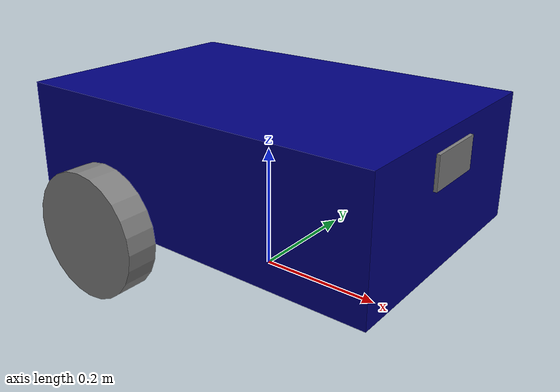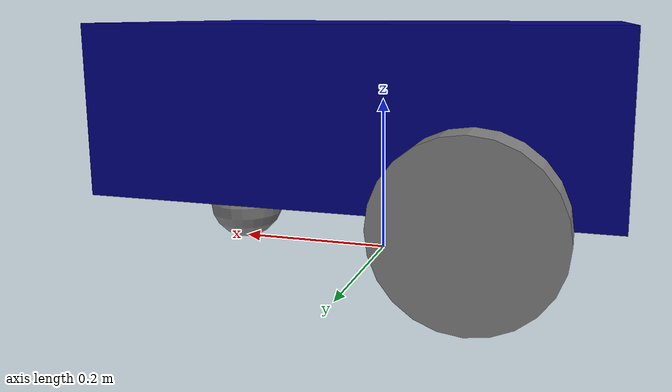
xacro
<?xml version="1.0"?>
<robot name="ugv_robot" xmlns:xacro="http://www.ros.org/wiki/xacro">

   <link name="base_footprint1" />
    <xacro:include filename="common_properties.xacro" />
    <xacro:include filename="mobile_base.xacro" />
    <xacro:include filename="mobile_base_gazebo.xacro" />

    <xacro:include filename="camera.xacro" />

</robot>

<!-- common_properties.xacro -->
<robot xmlns:xacro="http://www.ros.org/wiki/xacro">

    <material name="blue">
        <color rgba="0 0 0.5 1" />
    </material>

    <material name="grey">
        <color rgba="0.5 0.5 0.5 1" />
    </material>

        <material name="red">
        <color rgba="0.5 0 0 1" />
    </material>

    <xacro:macro name="box_inertia" params="m l w h xyz rpy">
      <inertial>
        <origin xyz="${xyz}" rpy="${rpy}" />
        <mass value="${m}" />
        <inertia ixx="${(m/12) * (h*h +l*l)}" ixy="0" ixz="0"
                 iyy="${(m/12) * (w*w +l*l)}" iyz="0"
                 izz="${(m/12) * (w*w +h*h)}" />
      </inertial>
    </xacro:macro>

    <xacro:macro name="cylinder_inertia" params="m r h xyz rpy">
        <inertial>
            <origin xyz="${xyz}" rpy="${rpy}" />
            <mass value="${m}" />
            <inertia ixx="${(m/12) * (3*r*r + h*h)}" ixy="0" ixz="0"
                     iyy="${(m/12) * (3*r*r + h*h)}" iyz="0"
                     izz="${(m/2) * (r*r)}" />
        </inertial>
    </xacro:macro>

    <xacro:macro name="sphere_inertia" params="m r xyz rpy">
        <inertial>
            <origin xyz="${xyz}" rpy="${rpy}" />
            <mass value="${m}" />
            <inertia ixx="${(2/5) * m * r * r}" ixy="0" ixz="0"
                     iyy="${(2/5) * m * r * r}" iyz="0"
                     izz="${(2/5) * m * r * r}" />
        </inertial>
    </xacro:macro>

</robot>

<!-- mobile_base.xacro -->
<robot xmlns:xacro="http://www.ros.org/wiki/xacro">

    <xacro:property name="base_length" value="0.6" />
    <xacro:property name="base_width" value="0.4" />
    <xacro:property name="base_height" value="0.2" />
    <xacro:property name="wheel_radius" value="0.1" />
    <xacro:property name="wheel_length" value="0.05" />

    <link name="base_link1">
        <visual>
            <geometry>
                <box size="${base_length} ${base_width} ${base_height}" />
            </geometry>
            <origin xyz="0 0 ${base_height / 2.0}" rpy="0 0 0" />
            <material name="blue" />
        </visual>
        <collision>
            <geometry>
                <box size="${base_length} ${base_width} ${base_height}" />
            </geometry>
            <origin xyz="0 0 ${base_height / 2.0}" rpy="0 0 0" />
        </collision>
        <xacro:box_inertia m="5.0" l="${2*base_length}" w="${2*base_width}" h="${2*base_height}"
                           xyz="0 0 ${base_height / 2.0}" rpy="0 0 0" />
    </link>

    <xacro:macro name="wheel_link" params="prefix">
        <link name="${prefix}_wheel_link">
            <visual>
                <geometry>
                    <cylinder radius="${wheel_radius}" length="${wheel_length}" />
                </geometry>
                <origin xyz="0 0 0" rpy="${pi / 2.0} 0 0" />
                <material name="grey" />
            </visual>
            <collision>
                <geometry>
                    <cylinder radius="${wheel_radius}" length="${wheel_length}" />
                </geometry>
                <origin xyz="0 0 0" rpy="${pi / 2.0} 0 0" />
            </collision>
            <xacro:cylinder_inertia m="1.0" r="${2*wheel_radius}" h="${2*wheel_length}"
                                    xyz="0 0 0" rpy="${pi / 2.0} 0 0" />
        </link>
    </xacro:macro>

    <xacro:wheel_link prefix="right" />
    <xacro:wheel_link prefix="left" />

    <link name="caster_wheel_link">
        <visual>
            <geometry>
                <sphere radius="${wheel_radius / 2.0}" />
            </geometry>
            <origin xyz="0 0 0" rpy="0 0 0" />
            <material name="grey" />
        </visual>
        <collision>
            <geometry>
                <sphere radius="${wheel_radius / 2.0}" />
            </geometry>
            <origin xyz="0 0 0" rpy="0 0 0" />
        </collision>
        <xacro:sphere_inertia m="0.5" r="${2*wheel_radius / 2.0}"
                              xyz="0 0 0" rpy="0 0 0" />
    </link>

    <joint name="base_joint" type="fixed">
        <parent link="base_footprint1" />
        <child link="base_link1" />
        <origin xyz="0 0 ${wheel_radius}" rpy="0 0 0"/>
    </joint>

    <joint name="base_right_wheel_joint" type="continuous">
        <parent link="base_link1" />
        <child link="right_wheel_link" />
        <origin xyz="${-base_length / 4.0} ${-(base_width + wheel_length) / 2.0} 0" rpy="0 0 0" />
        <axis xyz="0 1 0" />
    </joint>

    <joint name="base_left_wheel_joint" type="continuous">
        <parent link="base_link1" />
        <child link="left_wheel_link" />
        <origin xyz="${-base_length / 4.0} ${(base_width + wheel_length) / 2.0} 0" rpy="0 0 0" />
        <axis xyz="0 1 0" />
    </joint>

    <joint name="base_caster_wheel_joint" type="fixed">
        <parent link="base_link1" />
        <child link="caster_wheel_link" />
        <origin xyz="${base_length / 3.0} 0 ${-wheel_radius / 2.0}" rpy="0 0 0" />
    </joint>

</robot>

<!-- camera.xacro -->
<robot xmlns:xacro="http://www.ros.org/wiki/xacro">

    <xacro:property name="camera_length" value="0.01"/>
    <xacro:property name="camera_width" value="0.1"/>
    <xacro:property name="camera_height" value="0.05"/>

     <link name="camera_link">
        <visual>
            <geometry>
                <box size="${camera_length} ${camera_width} ${camera_height}"/>
            </geometry>
            <material name="grey"/>
        </visual>
        <collision>
            <geometry>
                <box size="${camera_length} ${camera_width} ${camera_height}"/>
            </geometry>
        </collision>
        <xacro:box_inertia m="0.1" l="${camera_length}" w="${camera_width}" h="${camera_height}"
                           xyz="0 0 0" rpy="0 0 0"/>

     </link>

     <joint name="base_camera_joint" type="fixed">

         <parent link="base_link1"/>
         <child link="camera_link" />
         <origin xyz="${base_length/2} 0 ${(base_height / 2.0)+ 0.05}" rpy="0 0 0" />

     </joint>

     <link name="camera_link_optical">
     </link>

    <joint name="camera_optical_joint" type="fixed">
       <!-- these values have to be these values otherwise the gazebo camera
        image won't be aligned properly with the frame it is supposedly
        originating from -->
        <origin xyz="0 0 0" rpy="${-pi/2} 0 ${-pi/2}"/>
        <parent link="camera_link"/>
        <child link="camera_link_optical"/>
    </joint>

     <gazebo reference="camera_link">
     <material>Gazebo/ZincYellow</material>
     <sensor name="camera_sensor" type="camera">
     <pose>0 0 0 0 0 0</pose>
     <visualize>true</visualize>
     <update_rate>10.0</update_rate>

      <camera>
       <horizontal_fov>1.3962634</horizontal_fov>
       <image>
         <width>1280</width>
         <height>720</height>
         <format>R8G8B8</format>
       </image>
      </camera>

     <plugin name="camera_controller" filename="libgazebo_ros_camera.so">
      <frame_name>camera_link_optical</frame_name>
     </plugin>
     </sensor>
    </gazebo>

</robot>
